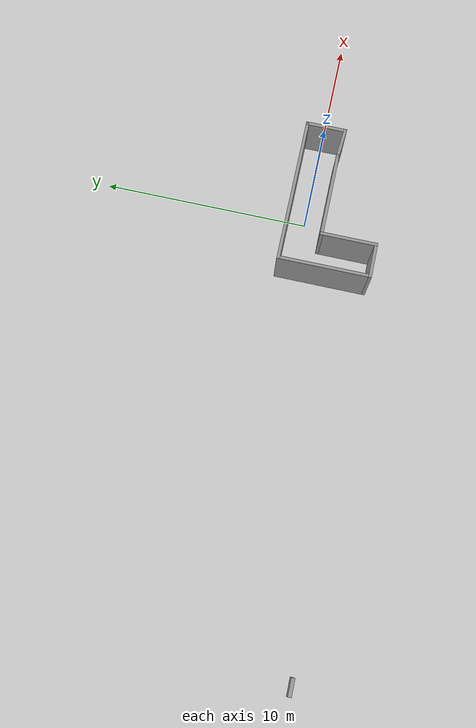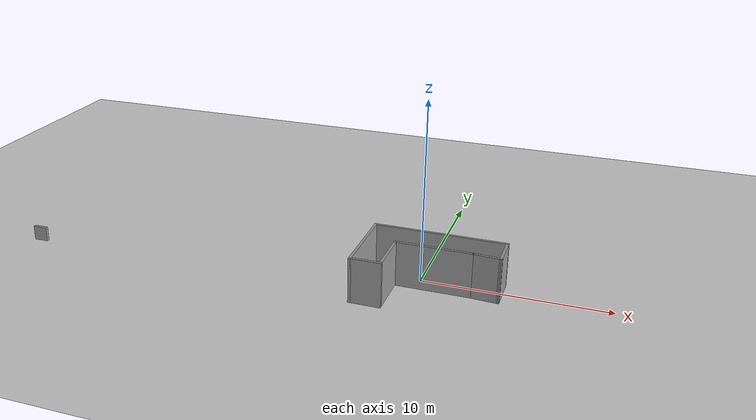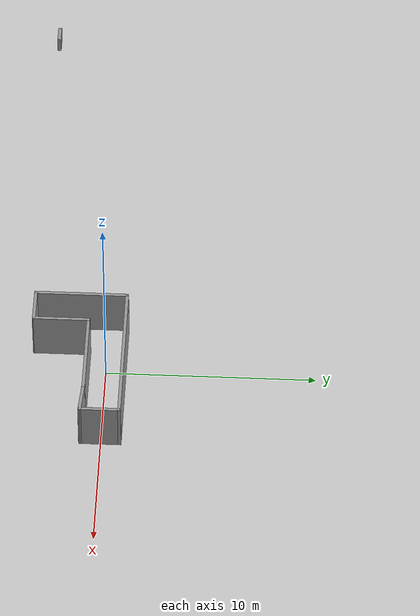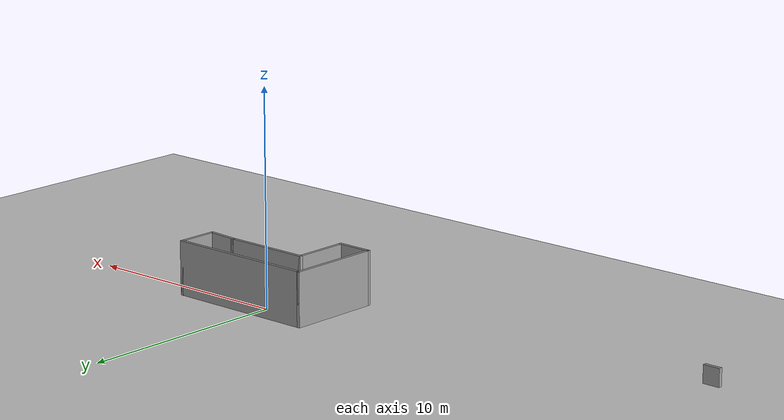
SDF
<sdf version="1.6">
 <world name="default">
  <light name="sun" type="directional">
   <pose>0 0 10 0 -0 0</pose>
   <diffuse>0.8 0.8 0.8 1</diffuse>
   <specular>0.1 0.1 0.1 1</specular>
   <attenuation>
    <range>1000</range>
    <constant>0.9</constant>
    <linear>0.01</linear>
    <quadratic>0.001</quadratic>
   </attenuation>
   <direction>-0.5 0.5 -1</direction>
  </light>
  <model name="ground_plane">
   <static>1</static>
   <link name="link">
    <collision name="collision">
     <geometry><plane><normal>0 0 1</normal><size>100 100</size></plane></geometry>
     <surface><friction><ode><mu>100</mu><mu2>50</mu2></ode></friction></surface>
    </collision>
    <visual name="visual">
     <cast_shadows>0</cast_shadows>
     <geometry><plane><normal>0 0 1</normal><size>100 100</size></plane></geometry>
     <material>
      <script><uri>file://media/materials/scripts/gazebo.material</uri><name>Gazebo/Grey</name></script>
     </material>
    </visual>
   </link>
  </model>
  <gravity>0 0 -9.8</gravity>
  <magnetic_field>6e-06 2.3e-05 -4.2e-05</magnetic_field>
  <atmosphere type="adiabatic"/>
  <physics name="default_physics" default="0" type="ode">
   <max_step_size>0.001</max_step_size>
   <real_time_factor>1</real_time_factor>
   <real_time_update_rate>1000</real_time_update_rate>
  </physics>
  <scene><ambient>0.4 0.4 0.4 1</ambient><background>0.7 0.7 0.7 1</background><shadows>1</shadows></scene>
  <spherical_coordinates>
   <surface_model>EARTH_WGS84</surface_model>
   <latitude_deg>0</latitude_deg>
   <longitude_deg>0</longitude_deg>
   <elevation>0</elevation>
   <heading_deg>0</heading_deg>
  </spherical_coordinates>
  <model name="Untitled">
   <pose>0.732576 -1.285 0 0 -0 0</pose>
   <link name="Wall_0">
    <collision name="Wall_0_Collision">
     <geometry><box><size>4.25 0.15 2.5</size></box></geometry>
     <pose>0 0 1.25 0 -0 0</pose>
    </collision>
    <visual name="Wall_0_Visual">
     <pose>0 0 1.25 0 -0 0</pose>
     <geometry><box><size>4.25 0.15 2.5</size></box></geometry>
     <material>
      <script><uri>file://media/materials/scripts/gazebo.material</uri><name>Gazebo/Grey</name></script>
      <ambient>1 1 1 1</ambient>
     </material>
    </visual>
    <pose>0.097423 0.425 0 0 -0 0</pose>
   </link>
   <link name="Wall_2">
    <collision name="Wall_2_Collision">
     <geometry><box><size>2.75 0.15 2.5</size></box></geometry>
     <pose>0 0 1.25 0 -0 0</pose>
    </collision>
    <visual name="Wall_2_Visual">
     <pose>0 0 1.25 0 -0 0</pose>
     <geometry><box><size>2.75 0.15 2.5</size></box></geometry>
     <material>
      <script><uri>file://media/materials/scripts/gazebo.material</uri><name>Gazebo/Grey</name></script>
      <ambient>1 1 1 1</ambient>
     </material>
    </visual>
    <pose>-1.95258 -0.875 0 0 0 -1.5708</pose>
   </link>
   <link name="Wall_3">
    <collision name="Wall_3_Collision">
     <geometry><box><size>1.75 0.15 2.5</size></box></geometry>
     <pose>0 0 1.25 0 -0 0</pose>
    </collision>
    <visual name="Wall_3_Visual">
     <pose>0 0 1.25 0 -0 0</pose>
     <geometry><box><size>1.75 0.15 2.5</size></box></geometry>
     <material>
      <script><uri>file://media/materials/scripts/gazebo.material</uri><name>Gazebo/Grey</name></script>
      <ambient>1 1 1 1</ambient>
     </material>
    </visual>
    <pose>-2.75258 -2.175 0 0 -0 3.14159</pose>
   </link>
   <link name="Wall_5">
    <collision name="Wall_5_Collision">
     <geometry><box><size>4.5 0.15 2.5</size></box></geometry>
     <pose>0 0 1.25 0 -0 0</pose>
    </collision>
    <visual name="Wall_5_Visual">
     <pose>0 0 1.25 0 -0 0</pose>
     <geometry><box><size>4.5 0.15 2.5</size></box></geometry>
     <material>
      <script><uri>file://media/materials/scripts/gazebo.material</uri><name>Gazebo/Grey</name></script>
      <ambient>1 1 1 1</ambient>
     </material>
    </visual>
    <pose>-3.55258 0 0 0 -0 1.5708</pose>
   </link>
   <link name="Wall_6">
    <collision name="Wall_6_Collision">
     <geometry><box><size>7.25 0.15 2.5</size></box></geometry>
     <pose>0 0 1.25 0 -0 0</pose>
    </collision>
    <visual name="Wall_6_Visual">
     <pose>0 0 1.25 0 -0 0</pose>
     <geometry><box><size>7.25 0.15 2.5</size></box></geometry>
     <material>
      <script><uri>file://media/materials/scripts/gazebo.material</uri><name>Gazebo/Grey</name></script>
      <ambient>1 1 1 1</ambient>
     </material>
    </visual>
    <pose>-0.002576 2.175 0 0 -0 0</pose>
   </link>
   <link name="Wall_7">
    <collision name="Wall_7_Collision">
     <geometry><box><size>2 0.15 2.5</size></box></geometry>
     <pose>0 0 1.25 0 -0 0</pose>
    </collision>
    <visual name="Wall_7_Visual">
     <pose>0 0 1.25 0 -0 0</pose>
     <geometry><box><size>2 0.15 2.5</size></box></geometry>
     <material>
      <script><uri>file://media/materials/scripts/gazebo.material</uri><name>Gazebo/Grey</name></script>
      <ambient>1 1 1 1</ambient>
     </material>
    </visual>
    <pose>3.54742 1.25 0 0 0 -1.5708</pose>
   </link>
   <link name="Wall_8">
    <collision name="Wall_8_Collision">
     <geometry><box><size>1.55357 0.15 2.5</size></box></geometry>
     <pose>0 0 1.25 0 -0 0</pose>
    </collision>
    <visual name="Wall_8_Visual">
     <pose>0 0 1.25 0 -0 0</pose>
     <geometry><box><size>1.55357 0.15 2.5</size></box></geometry>
     <material>
      <script><uri>file://media/materials/scripts/gazebo.material</uri><name>Gazebo/Grey</name></script>
      <ambient>1 1 1 1</ambient>
     </material>
    </visual>
    <pose>2.84742 0.375 0 0 -0 3.07029</pose>
   </link>
   <link name="Window_2">
    <collision name="Window_2_Collision">
     <geometry><box><size>0.8 0.17 0.8</size></box></geometry>
     <pose>0 0 0.4 0 -0 0</pose>
    </collision>
    <visual name="Window_2_Visual">
     <pose>0 0 0.4 0 -0 0</pose>
     <geometry><box><size>0.8 0.17 0.8</size></box></geometry>
     <material>
      <script><uri>file://media/materials/scripts/gazebo.material</uri><name>Gazebo/Grey</name></script>
     </material>
    </visual>
    <pose>-22.0233 -2.25355 0.5 0 -0 0</pose>
   </link>
   <static>1</static>
  </model>
  <model name="ball_bearing">
   <link name="link">
    <pose>0 0 0.003 0 -0 0</pose>
    <inertial>
     <mass>0.0011</mass>
     <inertia>
      <ixx>3.96e-09</ixx>
      <ixy>0</ixy>
      <ixz>0</ixz>
      <iyy>3.96e-09</iyy>
      <iyz>0</iyz>
      <izz>3.96e-09</izz>
     </inertia>
    </inertial>
    <collision name="collision">
     <geometry><sphere><radius>0.003</radius></sphere></geometry>
     <surface>
      <contact>
       <poissons_ratio>0.305</poissons_ratio>
       <elastic_modulus>2e+11</elastic_modulus>
       <ode><kp>100000</kp><kd>100</kd><max_vel>100</max_vel><min_depth>0.001</min_depth></ode>
      </contact>
      <friction>
       <torsional>
        <coefficient>1</coefficient>
        <use_patch_radius>0</use_patch_radius>
        <surface_radius>0.01</surface_radius>
       </torsional>
      </friction>
     </surface>
    </collision>
    <visual name="visual">
     <geometry><sphere><radius>0.003</radius></sphere></geometry>
     <material>
      <script><uri>file://media/materials/scripts/gazebo.material</uri><name>Gazebo/Grey</name></script>
     </material>
    </visual>
    <velocity_decay><linear>0</linear><angular>0.005</angular></velocity_decay>
   </link>
   <pose>0.369697 2.53664 -5.4e-05 0 -0 0</pose>
  </model>
 </world>
</sdf>
